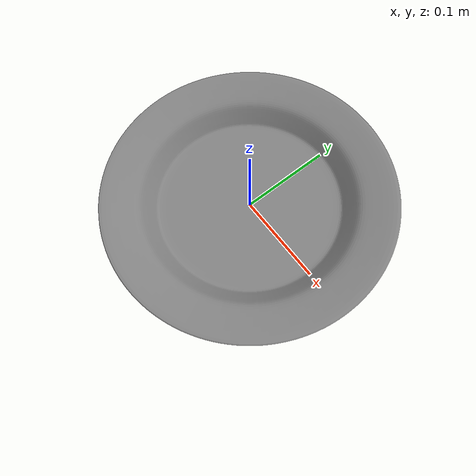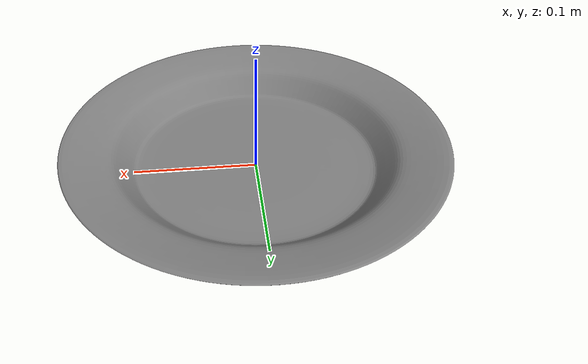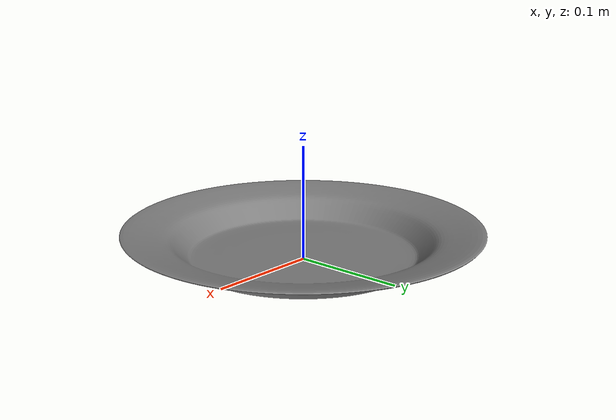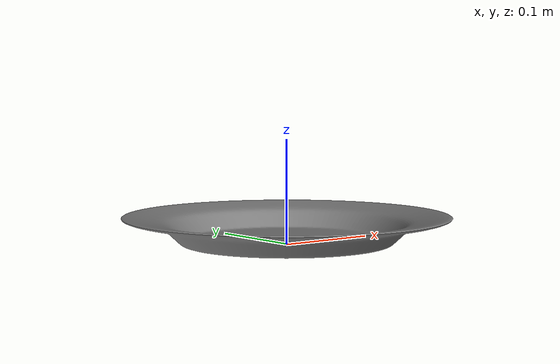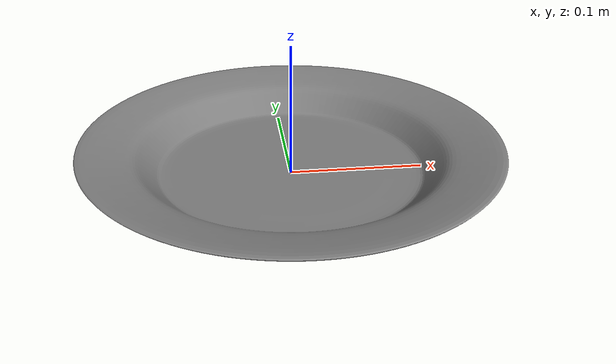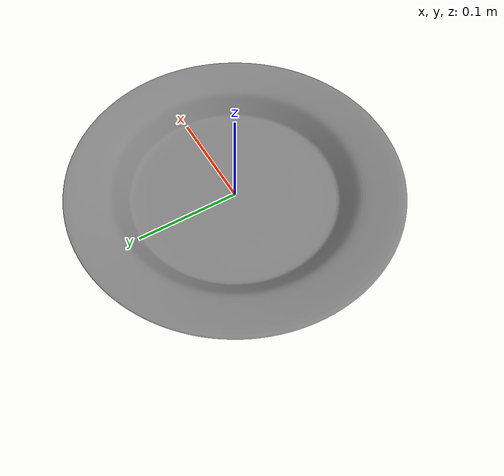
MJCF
<mujoco model="plate">
  <asset>
    <mesh file="meshes/plate.stl" name="plate_mesh"/>
  </asset>
  <worldbody>
    <body>
      <body name="object">
        <geom mesh="plate_mesh" type="mesh" solimp="0.998 0.998 0.001" solref="0.001 1" density="100" friction="0.95 0.3 0.1"  group="0" condim="4"/>
        <!--geom mesh="plate_mesh" type="mesh" friction="1 0.005 0.0001" solimp="0.99 0.99 0.01" solref="0.02 1" density="100" group="0" condim="4" priority="1"/-->
      </body>
      <site rgba="0 0 0 0" size="0.005" pos="0 0 0" name="bottom_site"/>
      <site rgba="0 0 0 0" size="0.005" pos="0 0 0.0275" name="top_site"/>
      <site rgba="0 0 0 0" size="0.005" pos="0.1566 0 0" name="horizontal_radius_site"/>
    </body>
  </worldbody>
</mujoco>
